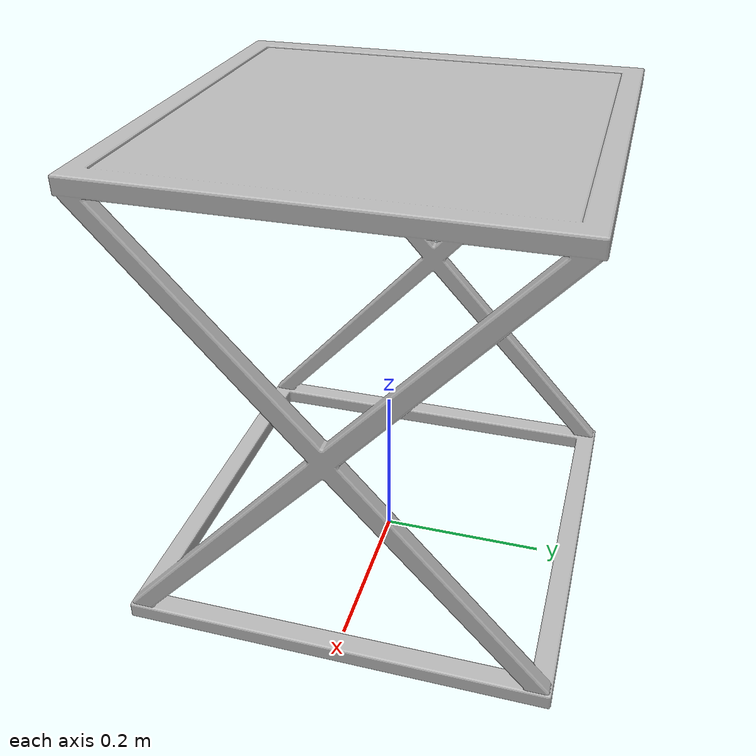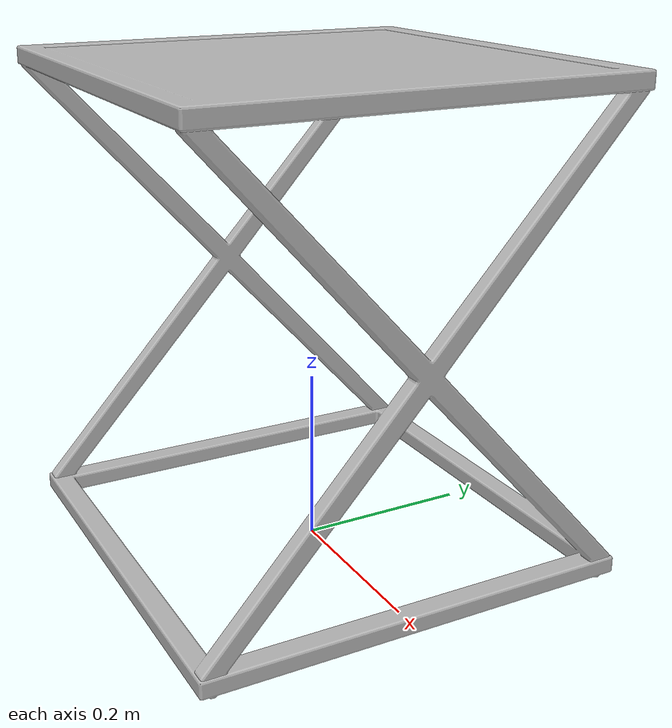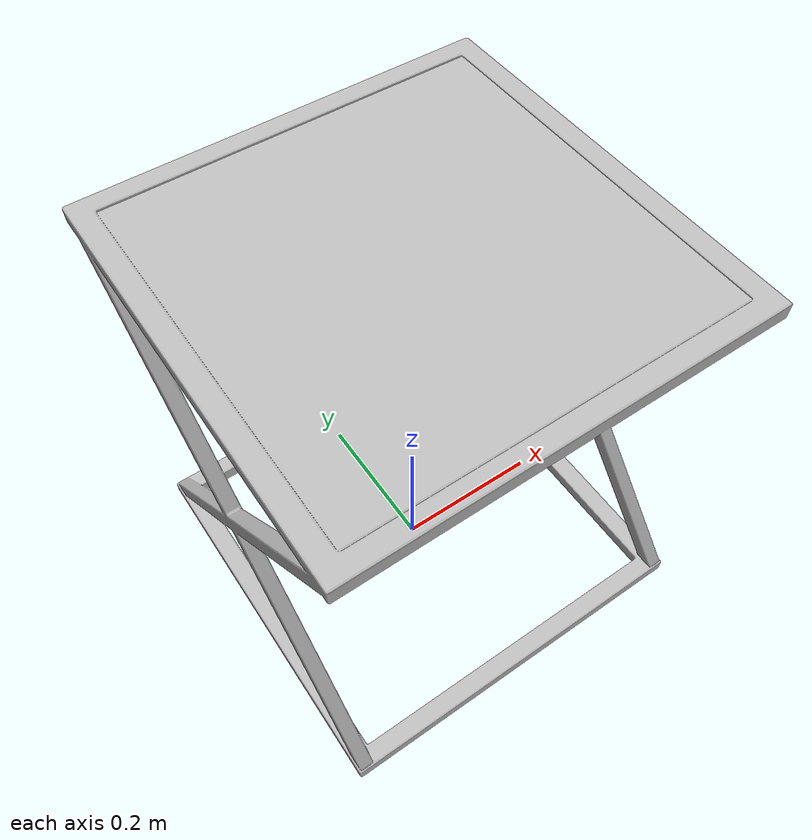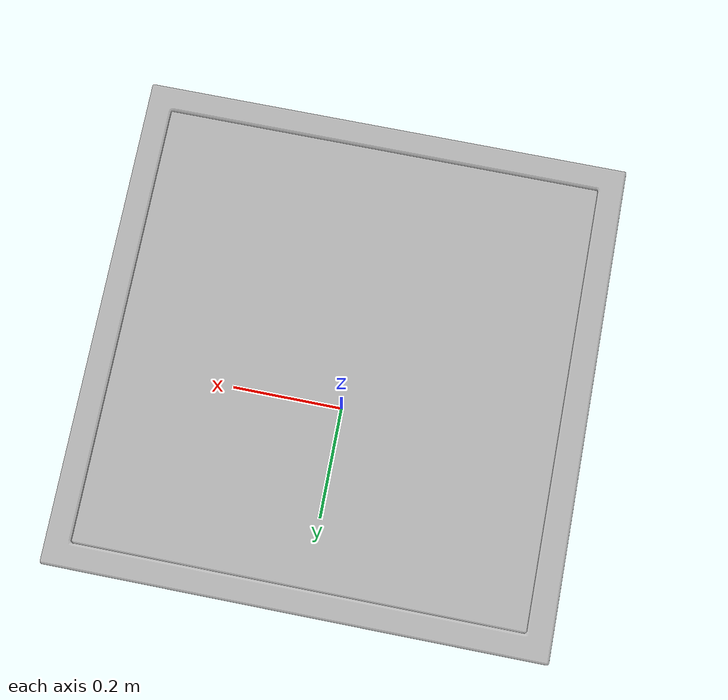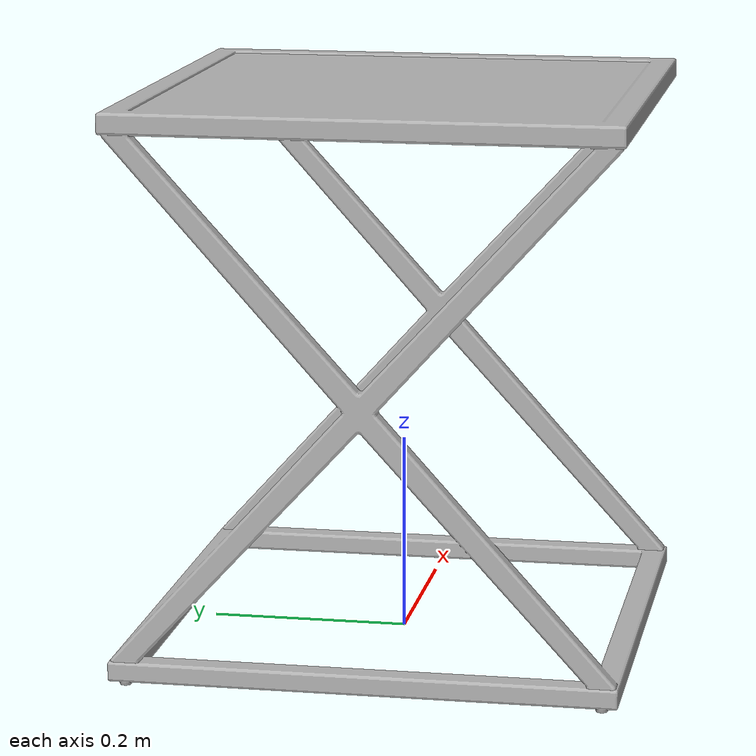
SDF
<sdf version="1.6">
	<model name="SofaTables_O1c292176b101_lod0">
		<link name="main_link">
			<visual name="visual_RootNode">
				<geometry>
					<mesh>
						<uri>model://SofaTables_O1c292176b101_lod0/meshes/visual_RootNode.dae</uri>
					</mesh>
				</geometry>
			</visual>
			<collision name="collision_RootNode_lod0_0">
				<geometry>
					<mesh>
						<uri>model://SofaTables_O1c292176b101_lod0/meshes/collision_RootNode_lod0_0.dae</uri>
					</mesh>
				</geometry>
			</collision>
		</link>
	</model>
</sdf>
